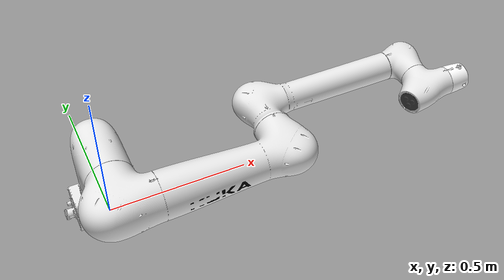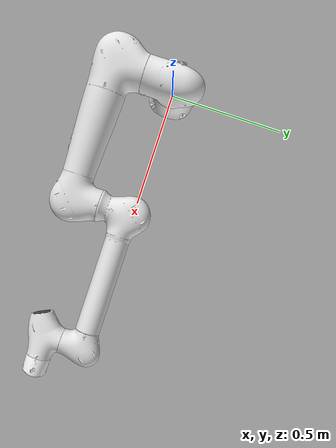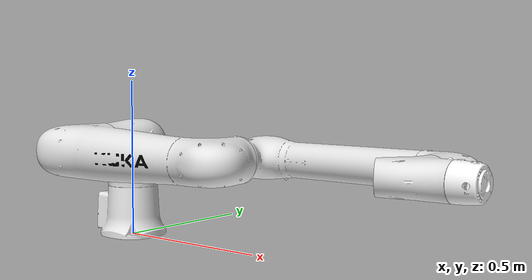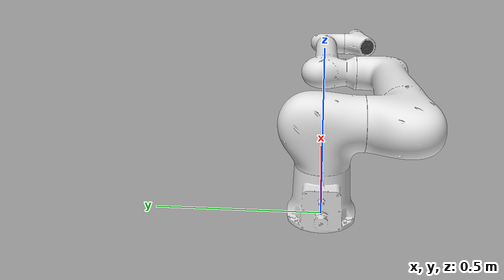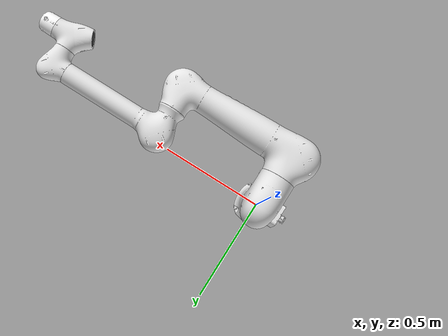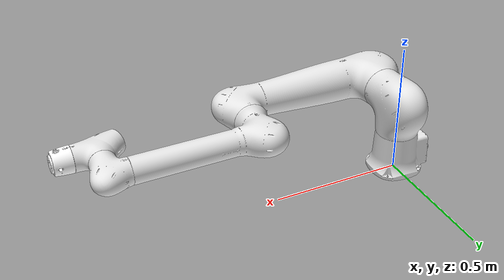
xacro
<?xml version="1.0" encoding="UTF-8"?>
<robot xmlns:xacro="http://www.ros.org/wiki/xacro" name="lbr_iico12_r1260">
  <!-- Import urdf files  -->
  <xacro:include filename="$(find kuka_lbr_iico_support)/urdf/lbr_iico12_r1260_macro.xacro"/>
  <xacro:include filename="$(find kuka_lbr_iico_support)/urdf/lbr_iico_ros2_control_macro.xacro"/>
  <!-- Basic arguments  -->
  <xacro:arg name="prefix" default=""/>
  <xacro:arg name="x" default="0"/>
  <xacro:arg name="y" default="0"/>
  <xacro:arg name="z" default="0"/>
  <xacro:arg name="roll" default="0"/>
  <xacro:arg name="pitch" default="0"/>
  <xacro:arg name="yaw" default="0"/>
  <!-- kroshu-specific arguments -->
  <xacro:arg name="driver_version" default="rsi_only"/>
  <xacro:arg name="mode" default="hardware"/>
  <xacro:arg name="gpio_config" default=""/>
  <xacro:arg name="roundtrip_time" default="0"/>
  <xacro:arg name="client_ip" default="0.0.0.0"/>
  <xacro:arg name="client_port" default="59152"/>
  <xacro:arg name="mxa_client_port" default="1337"/>
  <xacro:arg name="controller_ip" default="0.0.0.0"/>
  <xacro:arg name="verify_robot_model" default="true"/>
  <xacro:arg name="rsi_xml_config_file" default=""/>
  <xacro:kuka_lbr_iico_ros2_control name="$(arg prefix)lbr_iico12_r1260" driver_version="$(arg driver_version)" client_ip="$(arg client_ip)" client_port="$(arg client_port)" mxa_client_port="$(arg mxa_client_port)" controller_ip="$(arg controller_ip)" prefix="$(arg prefix)" mode="$(arg mode)" gpio_config="$(arg gpio_config)" roundtrip_time="$(arg roundtrip_time)" verify_robot_model="$(arg verify_robot_model)" rsi_xml_config_file="$(arg rsi_xml_config_file)">
    <ext_axes_ros2_control_joints/>
  </xacro:kuka_lbr_iico_ros2_control>
  <!-- world link -->
  <link name="world"/>
  <!-- robot links, joints -->
  <xacro:kuka_lbr_iico12_r1260_robot prefix="$(arg prefix)" package_name="kuka_lbr_iico_support"/>
  <!-- default world - base_link joint -->
  <joint name="$(arg prefix)world-base_link" type="fixed">
    <parent link="world"/>
    <child link="$(arg prefix)base_link"/>
    <origin xyz="$(arg x) $(arg y) $(arg z)" rpy="$(arg roll) $(arg pitch) $(arg yaw)"/>
  </joint>
</robot>

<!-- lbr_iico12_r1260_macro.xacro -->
<robot xmlns:xacro="http://www.ros.org/wiki/xacro" name="lbr_iico12_r1260">
  <xacro:macro name="kuka_lbr_iico12_r1260_robot" params="prefix package_name">
    <link name="${prefix}base"/>
    <link name="${prefix}base_link">
      <collision>
        <geometry>
          <mesh filename="package://${package_name}/meshes/lbr_iico12_r1260/collision/base_link.stl"/>
        </geometry>
        <origin rpy="0.0 0.0 0.0" xyz="0.0 0.0 0.0"/>
      </collision>
      <inertial>
        <inertia ixx="0.023824596522486644" ixy="0.0" ixz="0.0" iyy="0.040952522001280835" iyz="0.0" izz="0.041501376667671896"/>
        <mass value="4.9681"/>
        <origin rpy="-1.5874771565947552 -1.5428238041596212 0.009312461684573869" xyz="-0.0014669704716088645 5.500939588529284e-19 0.12125528914474347"/>
      </inertial>
      <visual>
        <geometry>
          <mesh filename="package://${package_name}/meshes/lbr_iico12_r1260/visual/base_link.dae"/>
        </geometry>
        <origin rpy="0.0 0.0 0.0" xyz="0.0 0.0 0.0"/>
      </visual>
    </link>
    <link name="${prefix}flange"/>
    <link name="${prefix}link_1">
      <collision>
        <geometry>
          <mesh filename="package://${package_name}/meshes/lbr_iico12_r1260/collision/link_1.stl"/>
        </geometry>
        <origin rpy="-3.141592653589793 0.0 -0.0" xyz="0.0 -2.5080766446537795e-17 0.2048"/>
      </collision>
      <inertial>
        <inertia ixx="0.08043272022648615" ixy="0.0" ixz="0.0" iyy="0.03700984058168938" iyz="0.0" izz="0.08962981268237688"/>
        <mass value="10.08902"/>
        <origin rpy="1.5201318635340038 -1.5399021746106873 -1.5196029569387068" xyz="-6.940257824843246e-05 0.021539962137055932 -0.052731729226426355"/>
      </inertial>
      <visual>
        <geometry>
          <mesh filename="package://${package_name}/meshes/lbr_iico12_r1260/visual/link_1.dae"/>
        </geometry>
        <origin rpy="-3.141592653589793 0.0 -0.0" xyz="0.0 -2.5080766446537795e-17 0.2048"/>
      </visual>
    </link>
    <link name="${prefix}link_2">
      <collision>
        <geometry>
          <mesh filename="package://${package_name}/meshes/lbr_iico12_r1260/collision/link_2.stl"/>
        </geometry>
        <origin rpy="1.5707963267948968 -0.0 1.5707963267948966" xyz="-0.288 1.7634913907721884e-17 0.15830000000000008"/>
      </collision>
      <inertial>
        <inertia ixx="1.0116366262201735" ixy="0.0" ixz="0.0" iyy="0.05900773934952483" iyz="0.0" izz="1.0297595621599656"/>
        <mass value="14.90109"/>
        <origin rpy="-1.6981651797599178 -1.5509605630018222 -3.014242054685866" xyz="0.20262881918034184 0.00012065302605379707 -0.048888073798628154"/>
      </inertial>
      <visual>
        <geometry>
          <mesh filename="package://${package_name}/meshes/lbr_iico12_r1260/visual/link_2.dae"/>
        </geometry>
        <origin rpy="1.5707963267948968 -0.0 1.5707963267948966" xyz="-0.288 1.7634913907721884e-17 0.15830000000000008"/>
      </visual>
    </link>
    <link name="${prefix}link_3">
      <collision>
        <geometry>
          <mesh filename="package://${package_name}/meshes/lbr_iico12_r1260/collision/link_3.stl"/>
        </geometry>
        <origin rpy="1.5707963267948968 -0.0 -0.0" xyz="-3.367778697655222e-17 0.838 0.12350000000000007"/>
      </collision>
      <inertial>
        <inertia ixx="0.010952941684594814" ixy="0.0" ixz="0.0" iyy="0.020961524625040976" iyz="0.0" izz="0.025107507020225954"/>
        <mass value="4.56604"/>
        <origin rpy="-1.5517472881769927 -1.4600097178164289 3.12021065186691" xyz="0.01725656199901884 -0.00012049226463193495 0.07938556587327313"/>
      </inertial>
      <visual>
        <geometry>
          <mesh filename="package://${package_name}/meshes/lbr_iico12_r1260/visual/link_3.dae"/>
        </geometry>
        <origin rpy="1.5707963267948968 -0.0 -0.0" xyz="-3.367778697655222e-17 0.838 0.12350000000000007"/>
      </visual>
    </link>
    <link name="${prefix}link_4">
      <collision>
        <geometry>
          <mesh filename="package://${package_name}/meshes/lbr_iico12_r1260/collision/link_4.stl"/>
        </geometry>
        <origin rpy="1.8369701987210297e-16 1.5707963267948966 0.0" xyz="-0.838 0.015000000000000084 0.09349999999999997"/>
      </collision>
      <inertial>
        <inertia ixx="0.00819981128786403" ixy="0.0" ixz="0.0" iyy="0.1527238013172914" iyz="0.0" izz="0.15519461494516507"/>
        <mass value="4.0746899999999995"/>
        <origin rpy="1.5203499072674949 -1.5561274689720688 -1.5165539420253749" xyz="0.00015849983679740067 -0.010471179304437883 -0.2758126673194771"/>
      </inertial>
      <visual>
        <geometry>
          <mesh filename="package://${package_name}/meshes/lbr_iico12_r1260/visual/link_4.dae"/>
        </geometry>
        <origin rpy="1.8369701987210297e-16 1.5707963267948966 0.0" xyz="-0.838 0.015000000000000084 0.09349999999999997"/>
      </visual>
    </link>
    <link name="${prefix}link_5">
      <collision>
        <geometry>
          <mesh filename="package://${package_name}/meshes/lbr_iico12_r1260/collision/link_5.stl"/>
        </geometry>
        <origin rpy="1.5707963267948968 -3.749399456654644e-33 -6.123233995736766e-17" xyz="-0.55 0.838 0.09850000000000005"/>
      </collision>
      <inertial>
        <inertia ixx="0.005227164067899354" ixy="0.0" ixz="0.0" iyy="0.005035864690518752" iyz="0.0" izz="0.007787427690468951"/>
        <mass value="2.3583100000000004"/>
        <origin rpy="1.5810868045675588 -1.031364528396854 3.140679687789915" xyz="0.015812219258706444 0.0002891281468509227 -0.05613473415284674"/>
      </inertial>
      <visual>
        <geometry>
          <mesh filename="package://${package_name}/meshes/lbr_iico12_r1260/visual/link_5.dae"/>
        </geometry>
        <origin rpy="1.5707963267948968 -3.749399456654644e-33 -6.123233995736766e-17" xyz="-0.55 0.838 0.09850000000000005"/>
      </visual>
    </link>
    <link name="${prefix}link_6">
      <collision>
        <geometry>
          <mesh filename="package://${package_name}/meshes/lbr_iico12_r1260/collision/link_6.stl"/>
        </geometry>
        <origin rpy="1.2246467991473532e-16 1.5707963267948966 0.0" xyz="-0.8380000000000001 0.16650000000000004 0.6335"/>
      </collision>
      <inertial>
        <inertia ixx="0.0012970676581736456" ixy="0.0" ixz="0.0" iyy="0.0013410015527370131" iyz="0.0" izz="0.0013442787724051223"/>
        <mass value="1.06516"/>
        <origin rpy="-1.426824733596022 -1.508797155746816 3.0545607136951647" xyz="-0.00022306076082466485 6.560610612490143e-06 -0.022309470877614628"/>
      </inertial>
      <visual>
        <geometry>
          <mesh filename="package://${package_name}/meshes/lbr_iico12_r1260/visual/link_6.dae"/>
        </geometry>
        <origin rpy="1.2246467991473532e-16 1.5707963267948966 0.0" xyz="-0.8380000000000001 0.16650000000000004 0.6335"/>
      </visual>
    </link>
    <link name="${prefix}tool0"/>
    <joint name="${prefix}base_link-base" type="fixed">
      <child link="${prefix}base"/>
      <origin rpy="0.0 0.0 0.0" xyz="0.0 0.0 0.0"/>
      <parent link="${prefix}base_link"/>
    </joint>
    <joint name="${prefix}joint_1" type="revolute">
      <axis xyz="0.0 0.0 1.0"/>
      <child link="${prefix}link_1"/>
      <limit effort="328.944" lower="-3.2288591161895095" upper="3.2288591161895095" velocity="2.0943951023931953"/>
      <origin rpy="3.141592653589793 0.0 0.0" xyz="0.0 0.0 0.2048"/>
      <parent link="${prefix}base_link"/>
    </joint>
    <joint name="${prefix}joint_2" type="revolute">
      <axis xyz="0.0 0.0 1.0"/>
      <child link="${prefix}link_2"/>
      <limit effort="303.30084996613465" lower="-4.014257279586958" upper="0.8726646259971648" velocity="2.0943951023931953"/>
      <origin rpy="1.5707963267948966 0.0 0.0" xyz="0.0 0.15830000000000002 -0.0832"/>
      <parent link="${prefix}link_1"/>
    </joint>
    <joint name="${prefix}joint_3" type="revolute">
      <axis xyz="0.0 0.0 1.0"/>
      <child link="${prefix}link_3"/>
      <limit effort="136.01768124904734" lower="-2.6179938779914944" upper="2.6179938779914944" velocity="3.141592653589793"/>
      <origin rpy="0.0 0.0 0.0" xyz="0.55 0.0 0.0348"/>
      <parent link="${prefix}link_2"/>
    </joint>
    <joint name="${prefix}joint_4" type="revolute">
      <axis xyz="0.0 0.0 1.0"/>
      <child link="${prefix}link_4"/>
      <limit effort="46.08671818239295" lower="-3.141592653589793" upper="3.141592653589793" velocity="3.141592653589793"/>
      <origin rpy="1.5707963267948966 0.0 -1.5707963267948966" xyz="0.0935 0.0 0.1085"/>
      <parent link="${prefix}link_3"/>
    </joint>
    <joint name="${prefix}joint_5" type="revolute">
      <axis xyz="0.0 0.0 1.0"/>
      <child link="${prefix}link_5"/>
      <limit effort="33.61343651301255" lower="-1.9198621771937625" upper="1.9198621771937625" velocity="3.141592653589793"/>
      <origin rpy="0.0 1.5707963267948966 1.5707963267948966" xyz="0.0 -0.0835 -0.4565"/>
      <parent link="${prefix}link_4"/>
    </joint>
    <joint name="${prefix}joint_6" type="revolute">
      <axis xyz="0.0 0.0 1.0"/>
      <child link="${prefix}link_6"/>
      <limit effort="7.138735997253471" lower="-3.839724354387525" upper="3.839724354387525" velocity="6.283185307179586"/>
      <origin rpy="1.5707963267948966 0.0 -1.5707963267948966" xyz="0.0835 0.0 -0.068"/>
      <parent link="${prefix}link_5"/>
    </joint>
    <joint name="${prefix}link_6-flange" type="fixed">
      <child link="${prefix}flange"/>
      <origin rpy="0.0 1.5707963267948966 0.0" xyz="0.0 0.0 -0.0765"/>
      <parent link="${prefix}link_6"/>
    </joint>
    <joint name="${prefix}link_6-tool0" type="fixed">
      <child link="${prefix}tool0"/>
      <origin rpy="3.141592653589793 0.0 3.141592653589793" xyz="0.0 0.0 -0.0765"/>
      <parent link="${prefix}link_6"/>
    </joint>
  </xacro:macro>
</robot>
